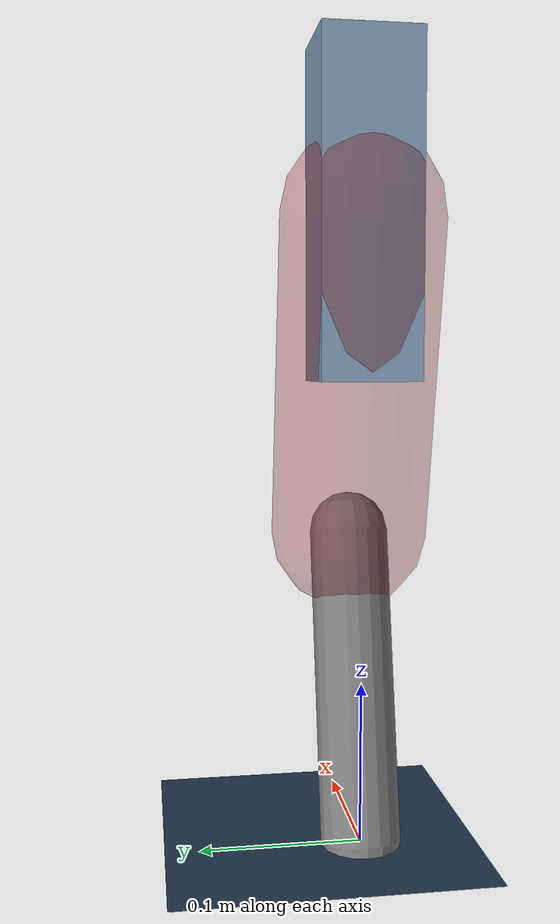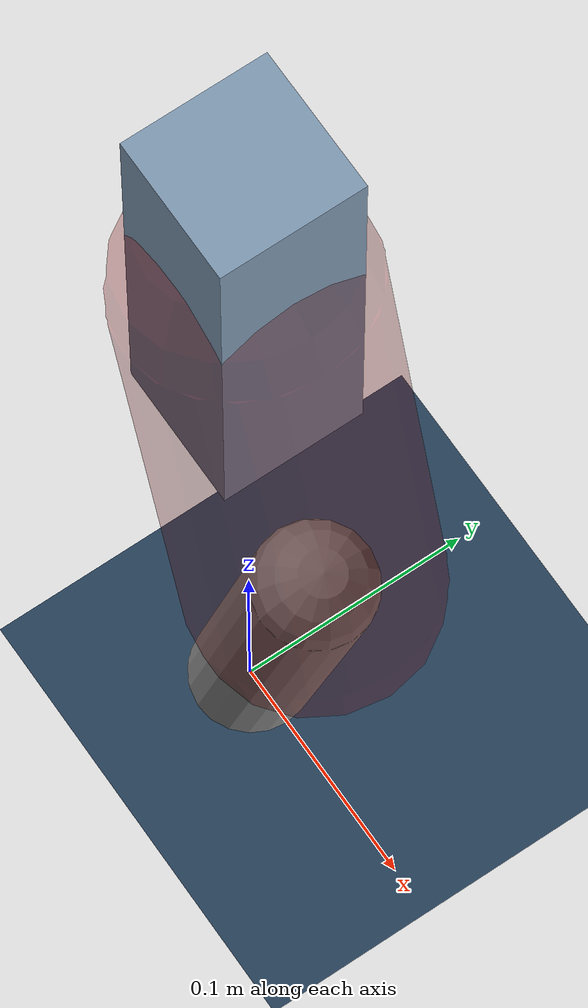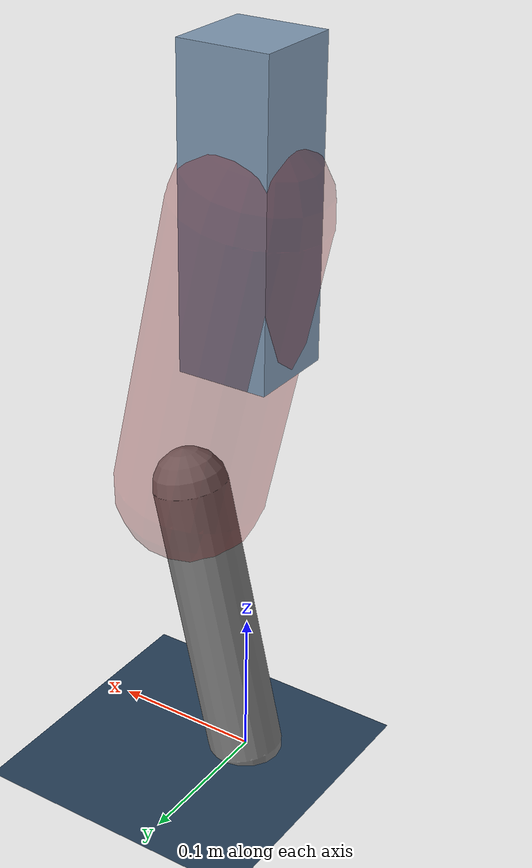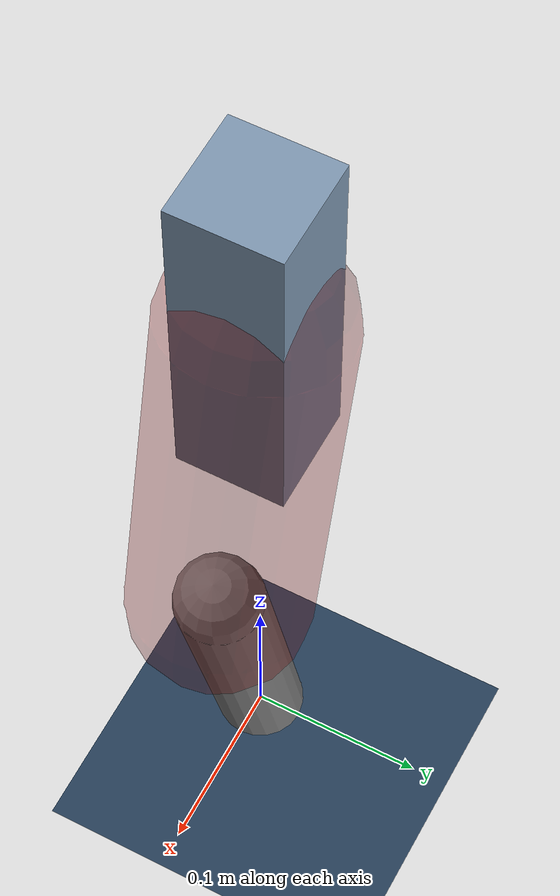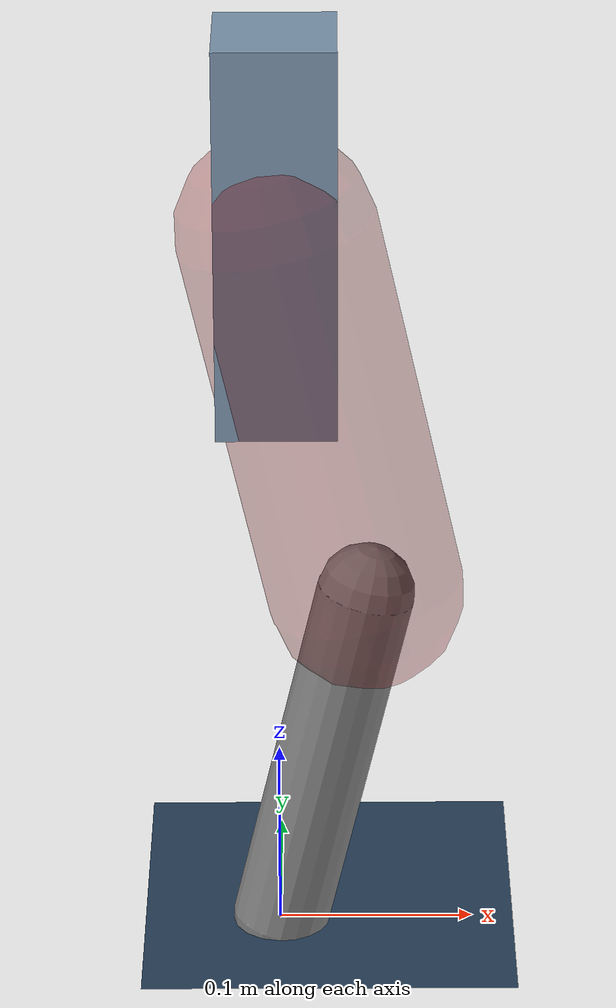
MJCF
<mujoco model="Hopper2D">
	<compiler inertiafromgeom="true" angle="radian" />
	<option timestep="0.001" integrator="implicit" cone="elliptic" solver="Newton" tolerance="1e-10" />

	<default>
		<geom contype="1" conaffinity="1" condim="3" friction="2 0.005 0.0001" solref="0.005 1" />
		<joint limited="true" damping="0.1" />
	</default>

	<asset>
		<texture name="skybox" type="skybox" builtin="gradient" rgb1=".4 .6 .8" rgb2="0 0 0" width="800" height="800" />
		<texture name="grid" type="2d" builtin="checker" rgb1=".1 .2 .3" rgb2=".2 .3 .4" width="300" height="300" mark="edge" markrgb=".2 .3 .4" />
		<material name="ground" texture="grid" texrepeat="1 1" texuniform="true" reflectance="0.1" />
		<material name="leg" rgba="0.5 0.6 0.7 1" />
	</asset>

	<worldbody>

		<geom name="floor" type="plane" size="5 5 0.25" material="ground" />

		<light directional="false" diffuse="0.8 0.8 0.8" specular="0.3 0.3 0.3" pos="0 0 2" dir="0 0 -1" />
		<light mode="targetbodycom" target="base" directional="false" diffuse="0.8 0.8 0.8" specular="0.3 0.3 0.3" pos="0 0 2" dir="0 0 -1" />

		<camera name="fixed" pos="0 -2 1" xyaxes="1 0 0 0 0 1" />
		<camera name="tracking" mode="trackcom" pos="0 -3 1" />

		<body name="root" pos="0 0 0.3866358792130079">
			<joint name="slide_x" type="slide" axis="1 0 0" range="-100 100" />
			<joint name="slide_z" type="slide" axis="0 0 1" range="0 10" />

			<body name="base" pos="0 0 0">
				<geom name="torso" type="box" size="0.03 0.03 0.1" mass="2.19" material="leg" />

				<body name="link1" pos="0 0 0" euler="0 1.3497449171817248 0">
					<joint type="hinge" axis="0 -1 0" pos="0 0 0" name="hinge1" limited="true" range="-3.14 3.14" stiffness="0" damping="0.1" />
					<geom name="thigh" type="capsule" fromto="0 0 0 0.2017926931689099 0 0" size="0.05" rgba="0.5 0 0 0.3" mass="0.7340817329222747" />

					<body name="link2" pos="0.2017926931689099 0 0" euler="0 0.4501253967085149 0">
						<joint type="hinge" axis="0 -1 0" pos="0 0 0" name="hinge2" limited="true" range="-3.14 3.14" stiffness="0" damping="0.1" />
						<geom name="shank" type="capsule" fromto="0 0 0 0.19484318604409798 0 0" size="0.025" mass="0.39655886743968816" />

					</body>
				</body>
			</body>
		</body>
	</worldbody>

	<actuator>
		<motor name="torque1" joint="hinge1" ctrlrange="-33.38612163388828 33.38612163388828" ctrllimited="true" gear="1" />
		<motor name="torque2" joint="hinge2" ctrlrange="-42.6895528714835 42.6895528714835" ctrllimited="true" gear="1" />
	</actuator>
</mujoco>
